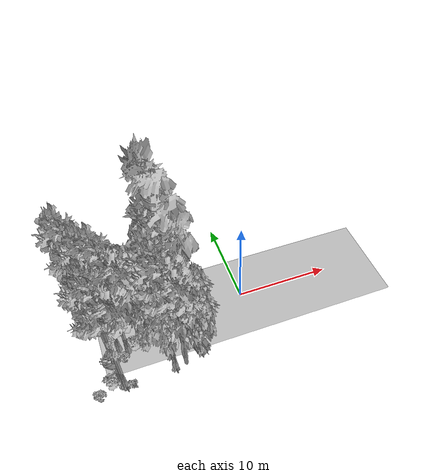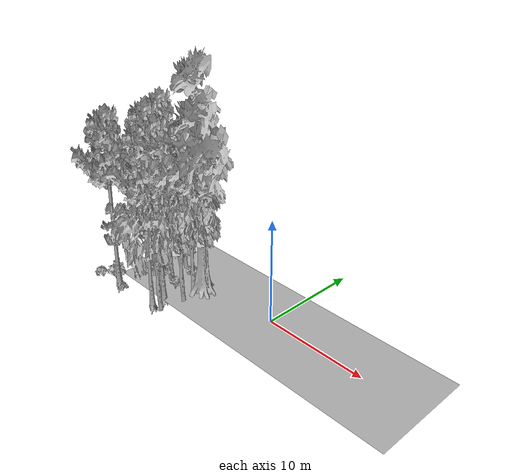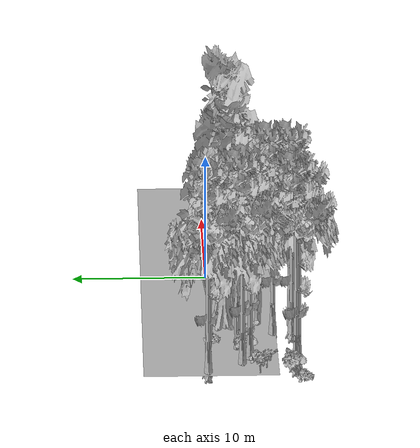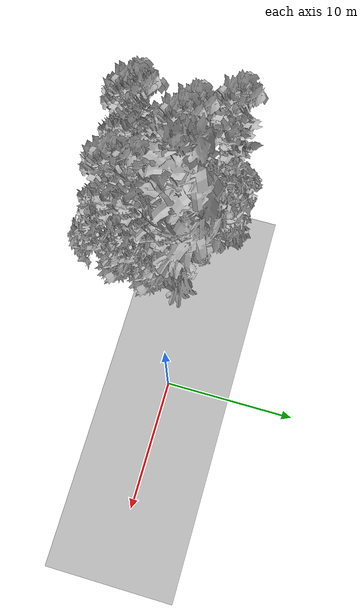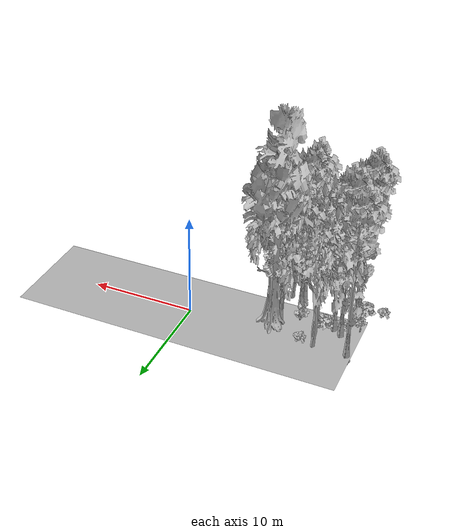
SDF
<sdf version="1.7">
 <world name="default">
  <model name="ground_plane">
   <static>1</static>
   <link name="link">
    <collision name="collision">
     <geometry><plane><normal>0 0 1</normal><size>100 100</size></plane></geometry>
     <surface><contact><ode><min_depth>0.01</min_depth><max_vel>0</max_vel></ode></contact></surface>
    </collision>
    <visual name="grass">
     <cast_shadows>0</cast_shadows>
     <geometry>
      <mesh>
       <scale>0.5814285714285714 0.18142857142857144 0.1</scale>
       <uri>file://grass_plane/meshes/grass_plane.dae</uri>
      </mesh>
     </geometry>
    </visual>
   </link>
  </model>
  <model name="Tree 46">
   <static>1</static>
   <pose>-9.307109804925275 -4.648253453084461 0 1.57079 -0 0</pose>
   <link name="link">
    <collision name="collision">
     <geometry><mesh><scale>3.5 5 3.5</scale><uri>model://tree_9/meshes/tree_9.obj</uri></mesh></geometry>
    </collision>
    <visual name="visual">
     <geometry><mesh><scale>3.5 5 3.5</scale><uri>model://tree_9/meshes/tree_9.obj</uri></mesh></geometry>
    </visual>
   </link>
  </model>
  <model name="Tree 61">
   <static>1</static>
   <pose>-7.84192574733882 -3.622049459758049 0 1.57079 -0 0</pose>
   <link name="link">
    <collision name="collision">
     <geometry><mesh><scale>3.5 5 3.5</scale><uri>model://tree_2/meshes/tree_2.obj</uri></mesh></geometry>
    </collision>
    <visual name="visual">
     <geometry><mesh><scale>3.5 5 3.5</scale><uri>model://tree_2/meshes/tree_2.obj</uri></mesh></geometry>
    </visual>
   </link>
  </model>
  <model name="Tree 66">
   <static>1</static>
   <pose>-7.739646454535148 -1.2299317246267236 0 1.57079 -0 0</pose>
   <link name="link">
    <collision name="collision">
     <geometry><mesh><scale>3.5 5 3.5</scale><uri>model://tree_4/meshes/tree_4.obj</uri></mesh></geometry>
    </collision>
    <visual name="visual">
     <geometry><mesh><scale>3.5 5 3.5</scale><uri>model://tree_4/meshes/tree_4.obj</uri></mesh></geometry>
    </visual>
   </link>
  </model>
  <model name="Tree 72">
   <static>1</static>
   <pose>-8.223108513071843 -2.0163061495879724 0 1.57079 -0 0</pose>
   <link name="link">
    <collision name="collision">
     <geometry><mesh><scale>3.5 5 3.5</scale><uri>model://tree_9/meshes/tree_9.obj</uri></mesh></geometry>
    </collision>
    <visual name="visual">
     <geometry><mesh><scale>3.5 5 3.5</scale><uri>model://tree_9/meshes/tree_9.obj</uri></mesh></geometry>
    </visual>
   </link>
  </model>
  <model name="Tree 95">
   <static>1</static>
   <pose>-15.268019403123702 0.24301344800882063 0 1.57079 -0 0</pose>
   <link name="link">
    <collision name="collision">
     <geometry><mesh><scale>3.5 5 3.5</scale><uri>model://tree_9/meshes/tree_9.obj</uri></mesh></geometry>
    </collision>
    <visual name="visual">
     <geometry><mesh><scale>3.5 5 3.5</scale><uri>model://tree_9/meshes/tree_9.obj</uri></mesh></geometry>
    </visual>
   </link>
  </model>
  <model name="Tree 219">
   <static>1</static>
   <pose>-12.226319321055179 0.13106564083889616 0 1.57079 -0 0</pose>
   <link name="link">
    <collision name="collision">
     <geometry><mesh><scale>3.5 5 3.5</scale><uri>model://tree_2/meshes/tree_2.obj</uri></mesh></geometry>
    </collision>
    <visual name="visual">
     <geometry><mesh><scale>3.5 5 3.5</scale><uri>model://tree_2/meshes/tree_2.obj</uri></mesh></geometry>
    </visual>
   </link>
  </model>
  <model name="Tree 235">
   <static>1</static>
   <pose>-13.12969300279967 -2.830112992002446 0 1.57079 -0 0</pose>
   <link name="link">
    <collision name="collision">
     <geometry><mesh><scale>3.5 5 3.5</scale><uri>model://tree_9/meshes/tree_9.obj</uri></mesh></geometry>
    </collision>
    <visual name="visual">
     <geometry><mesh><scale>3.5 5 3.5</scale><uri>model://tree_9/meshes/tree_9.obj</uri></mesh></geometry>
    </visual>
   </link>
  </model>
  <model name="Tree 237">
   <static>1</static>
   <pose>-14.468755687680122 -6.091091831314667 0 1.57079 -0 0</pose>
   <link name="link">
    <collision name="collision">
     <geometry><mesh><scale>3.5 5 3.5</scale><uri>model://tree_9/meshes/tree_9.obj</uri></mesh></geometry>
    </collision>
    <visual name="visual">
     <geometry><mesh><scale>3.5 5 3.5</scale><uri>model://tree_9/meshes/tree_9.obj</uri></mesh></geometry>
    </visual>
   </link>
  </model>
  <model name="Tree 337">
   <static>1</static>
   <pose>-13.94059651396158 -2.256980287084941 0 1.57079 -0 0</pose>
   <link name="link">
    <collision name="collision">
     <geometry><mesh><scale>3.5 5 3.5</scale><uri>model://tree_9/meshes/tree_9.obj</uri></mesh></geometry>
    </collision>
    <visual name="visual">
     <geometry><mesh><scale>3.5 5 3.5</scale><uri>model://tree_9/meshes/tree_9.obj</uri></mesh></geometry>
    </visual>
   </link>
  </model>
  <model name="Tree 381">
   <static>1</static>
   <pose>-8.117469329827635 -6.004387587935652 0 1.57079 -0 0</pose>
   <link name="link">
    <collision name="collision">
     <geometry><mesh><scale>3.5 5 3.5</scale><uri>model://tree_2/meshes/tree_2.obj</uri></mesh></geometry>
    </collision>
    <visual name="visual">
     <geometry><mesh><scale>3.5 5 3.5</scale><uri>model://tree_2/meshes/tree_2.obj</uri></mesh></geometry>
    </visual>
   </link>
  </model>
  <model name="Tree 406">
   <static>1</static>
   <pose>-9.186908763427937 -6.048684415354458 0 1.57079 -0 0</pose>
   <link name="link">
    <collision name="collision">
     <geometry><mesh><scale>3.5 5 3.5</scale><uri>model://tree_9/meshes/tree_9.obj</uri></mesh></geometry>
    </collision>
    <visual name="visual">
     <geometry><mesh><scale>3.5 5 3.5</scale><uri>model://tree_9/meshes/tree_9.obj</uri></mesh></geometry>
    </visual>
   </link>
  </model>
  <model name="Tree 420">
   <static>1</static>
   <pose>-11.706176721365424 -1.9828000660062273 0 1.57079 -0 0</pose>
   <link name="link">
    <collision name="collision">
     <geometry><mesh><scale>3.5 5 3.5</scale><uri>model://tree_2/meshes/tree_2.obj</uri></mesh></geometry>
    </collision>
    <visual name="visual">
     <geometry><mesh><scale>3.5 5 3.5</scale><uri>model://tree_2/meshes/tree_2.obj</uri></mesh></geometry>
    </visual>
   </link>
  </model>
  <model name="Tree 429">
   <static>1</static>
   <pose>-14.22834558220908 -6.282456585513035 0 1.57079 -0 0</pose>
   <link name="link">
    <collision name="collision">
     <geometry><mesh><scale>3.5 5 3.5</scale><uri>model://tree_9/meshes/tree_9.obj</uri></mesh></geometry>
    </collision>
    <visual name="visual">
     <geometry><mesh><scale>3.5 5 3.5</scale><uri>model://tree_9/meshes/tree_9.obj</uri></mesh></geometry>
    </visual>
   </link>
  </model>
  <model name="Bush 43">
   <static>1</static>
   <pose>-10.715967342098047 -0.09616513926936499 0 1.57079 -0 0</pose>
   <link name="link">
    <collision name="collision">
     <geometry><mesh><scale>2 2 2</scale><uri>model://bush_3/meshes/bush_3.obj</uri></mesh></geometry>
     <surface><contact><collide_without_contact>false</collide_without_contact></contact></surface>
    </collision>
    <visual name="visual">
     <geometry><mesh><scale>2 2 2</scale><uri>model://bush_3/meshes/bush_3.obj</uri></mesh></geometry>
    </visual>
   </link>
  </model>
  <model name="Bush 50">
   <static>1</static>
   <pose>-15.388349134478553 -3.497633097967709 0 1.57079 -0 0</pose>
   <link name="link">
    <collision name="collision">
     <geometry><mesh><scale>2 2 2</scale><uri>model://bush_5/meshes/bush_5.obj</uri></mesh></geometry>
     <surface><contact><collide_without_contact>false</collide_without_contact></contact></surface>
    </collision>
    <visual name="visual">
     <geometry><mesh><scale>2 2 2</scale><uri>model://bush_5/meshes/bush_5.obj</uri></mesh></geometry>
    </visual>
   </link>
  </model>
  <model name="Bush 59">
   <static>1</static>
   <pose>-9.852133510143688 -2.9098960068386344 0 1.57079 -0 0</pose>
   <link name="link">
    <collision name="collision">
     <geometry><mesh><scale>2 2 2</scale><uri>model://bush_0/meshes/bush_0.obj</uri></mesh></geometry>
     <surface><contact><collide_without_contact>false</collide_without_contact></contact></surface>
    </collision>
    <visual name="visual">
     <geometry><mesh><scale>2 2 2</scale><uri>model://bush_0/meshes/bush_0.obj</uri></mesh></geometry>
    </visual>
   </link>
  </model>
  <model name="Bush 84">
   <static>1</static>
   <pose>-12.26001353112673 -2.5998073644996396 0 1.57079 -0 0</pose>
   <link name="link">
    <collision name="collision">
     <geometry><mesh><scale>2 2 2</scale><uri>model://bush_1/meshes/bush_1.obj</uri></mesh></geometry>
     <surface><contact><collide_without_contact>false</collide_without_contact></contact></surface>
    </collision>
    <visual name="visual">
     <geometry><mesh><scale>2 2 2</scale><uri>model://bush_1/meshes/bush_1.obj</uri></mesh></geometry>
    </visual>
   </link>
  </model>
  <model name="Bush 107">
   <static>1</static>
   <pose>-15.246152478020377 -6.0009254080141545 0 1.57079 -0 0</pose>
   <link name="link">
    <collision name="collision">
     <geometry><mesh><scale>2 2 2</scale><uri>model://bush_1/meshes/bush_1.obj</uri></mesh></geometry>
     <surface><contact><collide_without_contact>false</collide_without_contact></contact></surface>
    </collision>
    <visual name="visual">
     <geometry><mesh><scale>2 2 2</scale><uri>model://bush_1/meshes/bush_1.obj</uri></mesh></geometry>
    </visual>
   </link>
  </model>
  <model name="Bush 111">
   <static>1</static>
   <pose>-16.662620658686443 -6.627005342066219 0 1.57079 -0 0</pose>
   <link name="link">
    <collision name="collision">
     <geometry><mesh><scale>2 2 2</scale><uri>model://bush_3/meshes/bush_3.obj</uri></mesh></geometry>
     <surface><contact><collide_without_contact>false</collide_without_contact></contact></surface>
    </collision>
    <visual name="visual">
     <geometry><mesh><scale>2 2 2</scale><uri>model://bush_3/meshes/bush_3.obj</uri></mesh></geometry>
    </visual>
   </link>
  </model>
  <model name="Bush 175">
   <static>1</static>
   <pose>-14.573365189760466 -3.994705009446559 0 1.57079 -0 0</pose>
   <link name="link">
    <collision name="collision">
     <geometry><mesh><scale>2 2 2</scale><uri>model://bush_5/meshes/bush_5.obj</uri></mesh></geometry>
     <surface><contact><collide_without_contact>false</collide_without_contact></contact></surface>
    </collision>
    <visual name="visual">
     <geometry><mesh><scale>2 2 2</scale><uri>model://bush_5/meshes/bush_5.obj</uri></mesh></geometry>
    </visual>
   </link>
  </model>
  <model name="Bush 274">
   <static>1</static>
   <pose>-13.595722851678957 -6.390501203907274 0 1.57079 -0 0</pose>
   <link name="link">
    <collision name="collision">
     <geometry><mesh><scale>2 2 2</scale><uri>model://bush_2/meshes/bush_2.obj</uri></mesh></geometry>
     <surface><contact><collide_without_contact>false</collide_without_contact></contact></surface>
    </collision>
    <visual name="visual">
     <geometry><mesh><scale>2 2 2</scale><uri>model://bush_2/meshes/bush_2.obj</uri></mesh></geometry>
    </visual>
   </link>
  </model>
  <model name="Bush 316">
   <static>1</static>
   <pose>-13.65887439833245 -3.301145603968898 0 1.57079 -0 0</pose>
   <link name="link">
    <collision name="collision">
     <geometry><mesh><scale>2 2 2</scale><uri>model://bush_3/meshes/bush_3.obj</uri></mesh></geometry>
     <surface><contact><collide_without_contact>false</collide_without_contact></contact></surface>
    </collision>
    <visual name="visual">
     <geometry><mesh><scale>2 2 2</scale><uri>model://bush_3/meshes/bush_3.obj</uri></mesh></geometry>
    </visual>
   </link>
  </model>
 </world>
</sdf>
